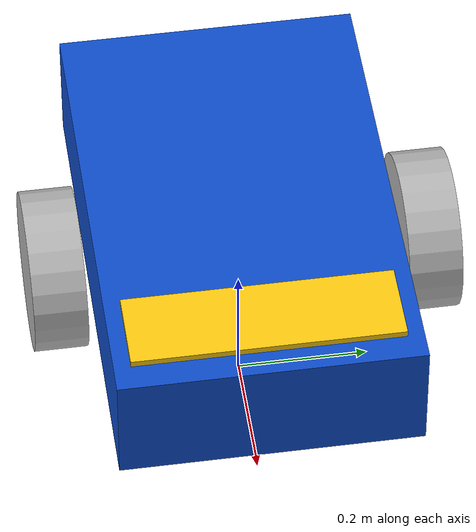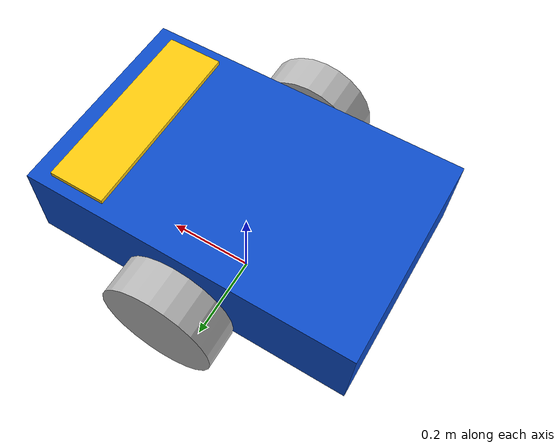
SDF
<?xml version="1.0" ?>
<sdf version="1.9">
  <model name="simple_rover">
    <pose>0 0 0.15 0 0 0</pose>

    <link name="base_link">
      <pose>0 0 0.15 0 0 0</pose>

      <inertial>
        <mass>5.0</mass>
        <inertia>
          <ixx>0.2</ixx>
          <iyy>0.2</iyy>
          <izz>0.2</izz>
          <ixy>0</ixy>
          <ixz>0</ixz>
          <iyz>0</iyz>
        </inertia>
      </inertial>

      <collision name="base_collision">
        <geometry>
          <box>
            <size>0.7 0.45 0.18</size>
          </box>
        </geometry>
      </collision>
      <!-- Front support to prevent the chassis tipping forward. -->
      <collision name="front_support_collision">
        <pose>0.28 0 -0.10 0 0 0</pose>
        <geometry>
          <sphere>
            <radius>0.05</radius>
          </sphere>
        </geometry>
        <surface>
          <friction>
            <ode>
              <mu>0.0</mu>
              <mu2>0.0</mu2>
            </ode>
          </friction>
        </surface>
      </collision>

      <!-- Rear support to prevent the chassis tipping backward. -->
      <collision name="rear_support_collision">
        <pose>-0.28 0 -0.10 0 0 0</pose>
        <geometry>
          <sphere>
            <radius>0.05</radius>
          </sphere>
        </geometry>
        <surface>
          <friction>
            <ode>
              <mu>0.0</mu>
              <mu2>0.0</mu2>
            </ode>
          </friction>
        </surface>
      </collision>

            <!-- Blue chassis -->
      <visual name="base_visual">
        <geometry>
          <box>
            <size>0.7 0.45 0.18</size>
          </box>
        </geometry>
        <material>
          <ambient>0.05 0.3 0.8 1</ambient>
          <diffuse>0.05 0.3 0.8 1</diffuse>
        </material>
      </visual>

      <!-- Yellow stripe on top, near the front (+X) -->
      <visual name="front_stripe">
        <pose>0.25 0 0.095 0 0 0</pose>
        <geometry>
          <box>
            <size>0.12 0.4 0.01</size>
          </box>
        </geometry>
        <material>
          <ambient>1 0.8 0.05 1</ambient>
          <diffuse>1 0.8 0.05 1</diffuse>
        </material>
      </visual>
      <!-- Horizontal LiDAR mounted above the chassis -->
      <sensor name="rover_lidar" type="gpu_lidar">
        <pose>0 0 0.20 0 0 0</pose>
        <topic>/scan</topic>
        <update_rate>10</update_rate>
        <always_on>true</always_on>
        <visualize>false</visualize>

        <lidar>
          <scan>
            <horizontal>
              <samples>1081</samples>
              <resolution>1</resolution>
              <min_angle>-3.141593</min_angle>
              <max_angle>3.141593</max_angle>
            </horizontal>
          </scan>
          <range>
            <min>0.10</min>
            <max>8.0</max>
            <resolution>0.01</resolution>
          </range>
        </lidar>
      </sensor>
    </link>

    <link name="left_wheel">
      <pose>0 0.28 0.12 1.5708 0 0</pose>
      <inertial>
        <mass>0.5</mass>
        <inertia>
          <ixx>0.01</ixx>
          <iyy>0.01</iyy>
          <izz>0.01</izz>
          <ixy>0</ixy>
          <ixz>0</ixz>
          <iyz>0</iyz>
        </inertia>
      </inertial>
      <collision name="left_wheel_collision">
        <geometry>
          <cylinder>
            <radius>0.12</radius>
            <length>0.08</length>
          </cylinder>
        </geometry>
      </collision>
      <visual name="left_wheel_visual">
        <geometry>
          <cylinder>
            <radius>0.12</radius>
            <length>0.08</length>
          </cylinder>
        </geometry>
      </visual>
    </link>

    <link name="right_wheel">
      <pose>0 -0.28 0.12 1.5708 0 0</pose>
      <inertial>
        <mass>0.5</mass>
        <inertia>
          <ixx>0.01</ixx>
          <iyy>0.01</iyy>
          <izz>0.01</izz>
          <ixy>0</ixy>
          <ixz>0</ixz>
          <iyz>0</iyz>
        </inertia>
      </inertial>
      <collision name="right_wheel_collision">
        <geometry>
          <cylinder>
            <radius>0.12</radius>
            <length>0.08</length>
          </cylinder>
        </geometry>
      </collision>
      <visual name="right_wheel_visual">
        <geometry>
          <cylinder>
            <radius>0.12</radius>
            <length>0.08</length>
          </cylinder>
        </geometry>
      </visual>
    </link>

    <joint name="left_wheel_joint" type="revolute">
      <parent>base_link</parent>
      <child>left_wheel</child>
      <axis>
        <xyz>0 0 -1</xyz>
      </axis>
    </joint>

    <joint name="right_wheel_joint" type="revolute">
      <parent>base_link</parent>
      <child>right_wheel</child>
      <axis>
        <xyz>0 0 -1</xyz>
      </axis>
    </joint>

    <plugin
      filename="gz-sim-diff-drive-system"
      name="gz::sim::systems::DiffDrive">

      <left_joint>left_wheel_joint</left_joint>
      <right_joint>right_wheel_joint</right_joint>

      <wheel_separation>0.56</wheel_separation>
      <wheel_radius>0.12</wheel_radius>

      <topic>/cmd_vel</topic>
      <odom_topic>/odom</odom_topic>
      <tf_topic>/model/simple_rover/tf</tf_topic>
      <frame_id>odom</frame_id>
      <child_frame_id>base_link</child_frame_id>
    </plugin>

  </model>
</sdf>
